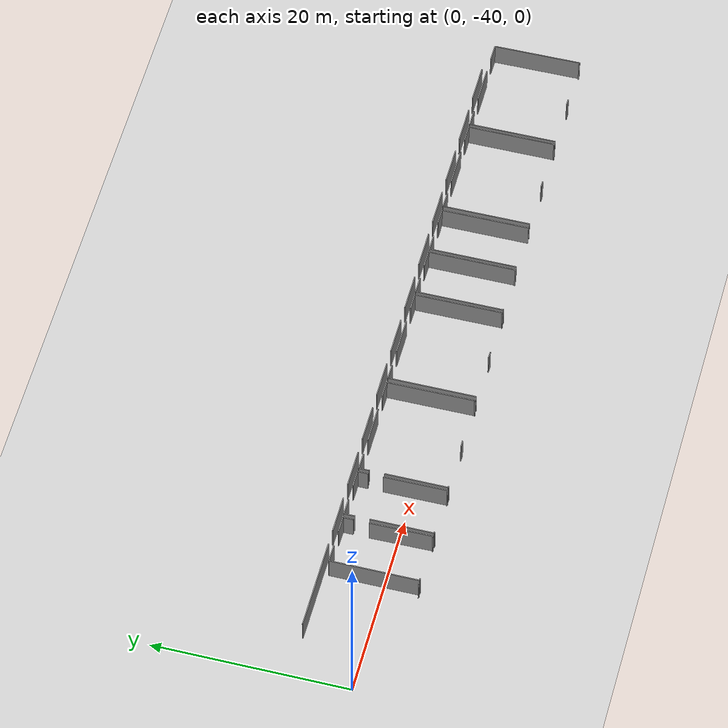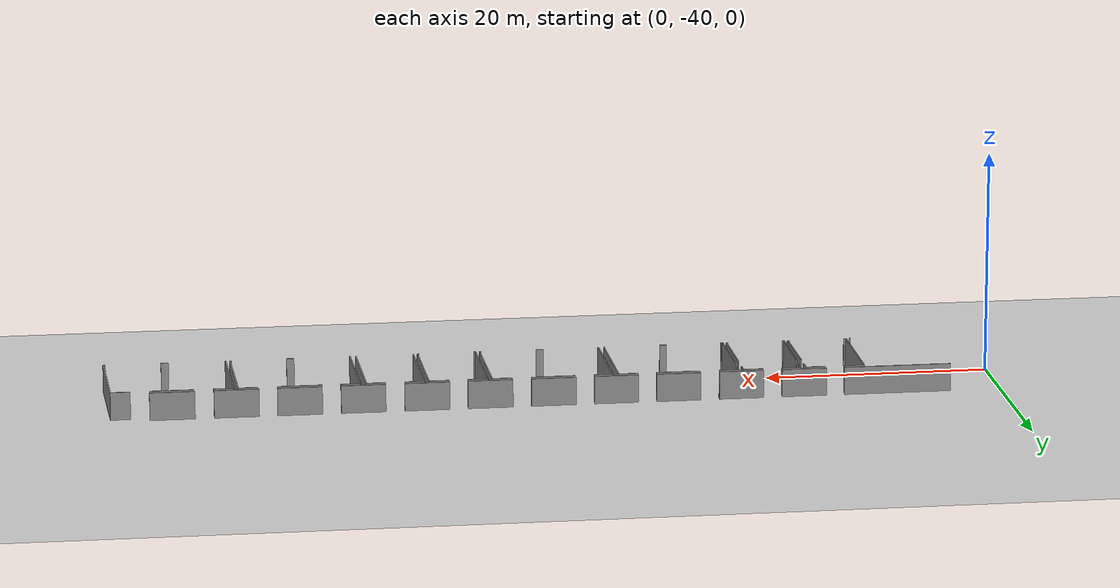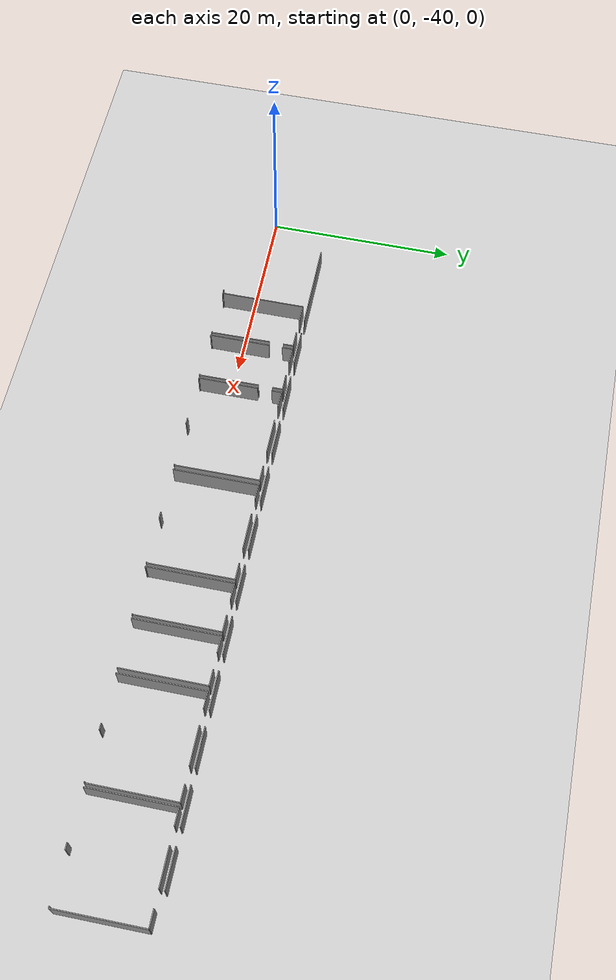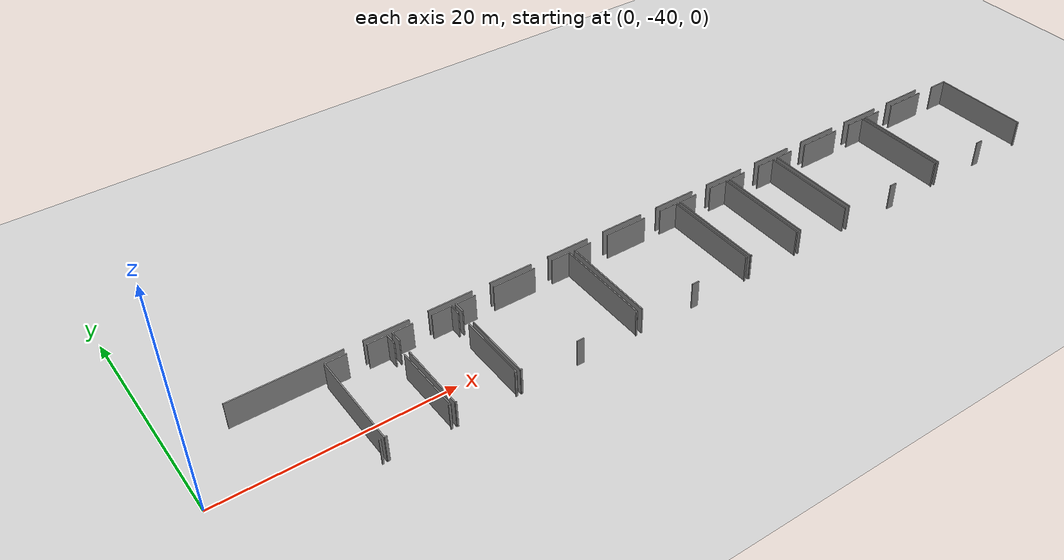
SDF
<sdf version="1.6">
 <world name="default">
  <model name="ground_plane">
   <static>1</static>
   <link name="link">
    <collision name="collision">
     <geometry><plane><normal>0 0 1</normal><size>100 100</size></plane></geometry>
     <surface><friction><ode><mu>100</mu><mu2>50</mu2></ode></friction></surface>
    </collision>
    <visual name="visual">
     <cast_shadows>0</cast_shadows>
     <geometry><plane><normal>0 0 1</normal><size>100 100</size></plane></geometry>
     <material>
      <script><uri>file://media/materials/scripts/gazebo.material</uri><name>Gazebo/Grey</name></script>
     </material>
    </visual>
   </link>
  </model>
  <model name="50015849">
   <static>1</static>
   <link name="Wall_64">
    <collision name="Wall_64_Collision">
     <geometry><box><size>3.99093143325 0.1 2.5</size></box></geometry>
     <pose>1.99546571663 0 1.25 0 0 0</pose>
    </collision>
    <visual name="Wall_64_Visual">
     <pose>1.99546571663 0 1.25 0 0 0</pose>
     <geometry><box><size>3.99093143325 0.1 2.5</size></box></geometry>
     <material>
      <script><uri>file://media/materials/scripts/gazebo.material</uri><name>Gazebo/Grey</name></script>
      <ambient>1 1 1 1</ambient>
     </material>
    </visual>
    <pose>201.728870176 -77.6431887316 0 0 0 3.14159265359</pose>
   </link>
   <link name="Wall_65">
    <collision name="Wall_65_Collision">
     <geometry><box><size>3.96476722107 0.1 2.5</size></box></geometry>
     <pose>1.98238361053 0 1.25 0 0 0</pose>
    </collision>
    <visual name="Wall_65_Visual">
     <pose>1.98238361053 0 1.25 0 0 0</pose>
     <geometry><box><size>3.96476722107 0.1 2.5</size></box></geometry>
     <material>
      <script><uri>file://media/materials/scripts/gazebo.material</uri><name>Gazebo/Grey</name></script>
      <ambient>1 1 1 1</ambient>
     </material>
    </visual>
    <pose>196.073844044 -77.6431887316 0 0 0 3.14159265359</pose>
   </link>
   <link name="Wall_66">
    <collision name="Wall_66_Collision">
     <geometry><box><size>3.9655292855 0.1 2.5</size></box></geometry>
     <pose>1.98276464275 0 1.25 0 0 0</pose>
    </collision>
    <visual name="Wall_66_Visual">
     <pose>1.98276464275 0 1.25 0 0 0</pose>
     <geometry><box><size>3.9655292855 0.1 2.5</size></box></geometry>
     <material>
      <script><uri>file://media/materials/scripts/gazebo.material</uri><name>Gazebo/Grey</name></script>
      <ambient>1 1 1 1</ambient>
     </material>
    </visual>
    <pose>190.526523018 -77.6431887316 0 0 0 3.14159265359</pose>
   </link>
   <link name="Wall_67">
    <collision name="Wall_67_Collision">
     <geometry><box><size>3.93606279411 0.1 2.5</size></box></geometry>
     <pose>1.96803139705 0 1.25 0 0 0</pose>
    </collision>
    <visual name="Wall_67_Visual">
     <pose>1.96803139705 0 1.25 0 0 0</pose>
     <geometry><box><size>3.93606279411 0.1 2.5</size></box></geometry>
     <material>
      <script><uri>file://media/materials/scripts/gazebo.material</uri><name>Gazebo/Grey</name></script>
      <ambient>1 1 1 1</ambient>
     </material>
    </visual>
    <pose>184.905281742 -77.6431887316 0 0 0 3.14159265359</pose>
   </link>
   <link name="Wall_68">
    <collision name="Wall_68_Collision">
     <geometry><box><size>3.97823035938 0.1 2.5</size></box></geometry>
     <pose>1.98911517969 0 1.25 0 0 0</pose>
    </collision>
    <visual name="Wall_68_Visual">
     <pose>1.98911517969 0 1.25 0 0 0</pose>
     <geometry><box><size>3.97823035938 0.1 2.5</size></box></geometry>
     <material>
      <script><uri>file://media/materials/scripts/gazebo.material</uri><name>Gazebo/Grey</name></script>
      <ambient>1 1 1 1</ambient>
     </material>
    </visual>
    <pose>179.299027733 -77.6431887316 0 0 0 3.14159265359</pose>
   </link>
   <link name="Wall_69">
    <collision name="Wall_69_Collision">
     <geometry><box><size>3.97823035938 0.1 2.5</size></box></geometry>
     <pose>1.98911517969 0 1.25 0 0 0</pose>
    </collision>
    <visual name="Wall_69_Visual">
     <pose>1.98911517969 0 1.25 0 0 0</pose>
     <geometry><box><size>3.97823035938 0.1 2.5</size></box></geometry>
     <material>
      <script><uri>file://media/materials/scripts/gazebo.material</uri><name>Gazebo/Grey</name></script>
      <ambient>1 1 1 1</ambient>
     </material>
    </visual>
    <pose>173.691503617 -77.6431887316 0 0 0 3.14159265359</pose>
   </link>
   <link name="Wall_70">
    <collision name="Wall_70_Collision">
     <geometry><box><size>3.97823035938 0.1 2.5</size></box></geometry>
     <pose>1.98911517969 0 1.25 0 0 0</pose>
    </collision>
    <visual name="Wall_70_Visual">
     <pose>1.98911517969 0 1.25 0 0 0</pose>
     <geometry><box><size>3.97823035938 0.1 2.5</size></box></geometry>
     <material>
      <script><uri>file://media/materials/scripts/gazebo.material</uri><name>Gazebo/Grey</name></script>
      <ambient>1 1 1 1</ambient>
     </material>
    </visual>
    <pose>168.084233522 -77.6431887316 0 0 0 3.14159265359</pose>
   </link>
   <link name="Wall_71">
    <collision name="Wall_71_Collision">
     <geometry><box><size>3.93606279411 0.1 2.5</size></box></geometry>
     <pose>1.96803139705 0 1.25 0 0 0</pose>
    </collision>
    <visual name="Wall_71_Visual">
     <pose>1.96803139705 0 1.25 0 0 0</pose>
     <geometry><box><size>3.93606279411 0.1 2.5</size></box></geometry>
     <material>
      <script><uri>file://media/materials/scripts/gazebo.material</uri><name>Gazebo/Grey</name></script>
      <ambient>1 1 1 1</ambient>
     </material>
    </visual>
    <pose>162.466040504 -77.6431887316 0 0 0 3.14159265359</pose>
   </link>
   <link name="Wall_72">
    <collision name="Wall_72_Collision">
     <geometry><box><size>3.93606279411 0.1 2.5</size></box></geometry>
     <pose>1.96803139705 0 1.25 0 0 0</pose>
    </collision>
    <visual name="Wall_72_Visual">
     <pose>1.96803139705 0 1.25 0 0 0</pose>
     <geometry><box><size>3.93606279411 0.1 2.5</size></box></geometry>
     <material>
      <script><uri>file://media/materials/scripts/gazebo.material</uri><name>Gazebo/Grey</name></script>
      <ambient>1 1 1 1</ambient>
     </material>
    </visual>
    <pose>156.903478189 -77.6431887316 0 0 0 3.14159265359</pose>
   </link>
   <link name="Wall_73">
    <collision name="Wall_73_Collision">
     <geometry><box><size>3.97594416608 0.1 2.5</size></box></geometry>
     <pose>1.98797208304 0 1.25 0 0 0</pose>
    </collision>
    <visual name="Wall_73_Visual">
     <pose>1.98797208304 0 1.25 0 0 0</pose>
     <geometry><box><size>3.97594416608 0.1 2.5</size></box></geometry>
     <material>
      <script><uri>file://media/materials/scripts/gazebo.material</uri><name>Gazebo/Grey</name></script>
      <ambient>1 1 1 1</ambient>
     </material>
    </visual>
    <pose>151.306368953 -77.6431887316 0 0 0 3.14159265359</pose>
   </link>
   <link name="Wall_74">
    <collision name="Wall_74_Collision">
     <geometry><box><size>3.99524979837 0.1 2.5</size></box></geometry>
     <pose>1.99762489919 0 1.25 0 0 0</pose>
    </collision>
    <visual name="Wall_74_Visual">
     <pose>1.99762489919 0 1.25 0 0 0</pose>
     <geometry><box><size>3.99524979837 0.1 2.5</size></box></geometry>
     <material>
      <script><uri>file://media/materials/scripts/gazebo.material</uri><name>Gazebo/Grey</name></script>
      <ambient>1 1 1 1</ambient>
     </material>
    </visual>
    <pose>145.688683978 -77.6431887316 0 0 0 3.14159265359</pose>
   </link>
   <link name="Wall_75">
    <collision name="Wall_75_Collision">
     <geometry><box><size>9.58473838963 0.1 2.5</size></box></geometry>
     <pose>4.79236919482 0 1.25 0 0 0</pose>
    </collision>
    <visual name="Wall_75_Visual">
     <pose>4.79236919482 0 1.25 0 0 0</pose>
     <geometry><box><size>9.58473838963 0.1 2.5</size></box></geometry>
     <material>
      <script><uri>file://media/materials/scripts/gazebo.material</uri><name>Gazebo/Grey</name></script>
      <ambient>1 1 1 1</ambient>
     </material>
    </visual>
    <pose>140.10834016 -77.6431887316 0 0 0 3.14159265359</pose>
   </link>
   <link name="Wall_143">
    <collision name="Wall_143_Collision">
     <geometry><box><size>0.151650822077 0.1 2.5</size></box></geometry>
     <pose>0.0758254110385 0 1.25 0 0 0</pose>
    </collision>
    <visual name="Wall_143_Visual">
     <pose>0.0758254110385 0 1.25 0 0 0</pose>
     <geometry><box><size>0.151650822077 0.1 2.5</size></box></geometry>
     <material>
      <script><uri>file://media/materials/scripts/gazebo.material</uri><name>Gazebo/Grey</name></script>
      <ambient>1 1 1 1</ambient>
     </material>
    </visual>
    <pose>137.937980656 -87.1921100929 0 0 0 3.14159265359</pose>
   </link>
   <link name="Wall_151">
    <collision name="Wall_151_Collision">
     <geometry><box><size>0.166892110728 0.1 2.5</size></box></geometry>
     <pose>0.083446055364 0 1.25 0 0 0</pose>
    </collision>
    <visual name="Wall_151_Visual">
     <pose>0.083446055364 0 1.25 0 0 0</pose>
     <geometry><box><size>0.166892110728 0.1 2.5</size></box></geometry>
     <material>
      <script><uri>file://media/materials/scripts/gazebo.material</uri><name>Gazebo/Grey</name></script>
      <ambient>1 1 1 1</ambient>
     </material>
    </visual>
    <pose>143.547282923 -87.1697562029 0 0 0 3.14159265359</pose>
   </link>
   <link name="Wall_152">
    <collision name="Wall_152_Collision">
     <geometry><box><size>0.217950427709 0.1 2.5</size></box></geometry>
     <pose>0.108975213854 0 1.25 0 0 0</pose>
    </collision>
    <visual name="Wall_152_Visual">
     <pose>0.108975213854 0 1.25 0 0 0</pose>
     <geometry><box><size>0.217950427709 0.1 2.5</size></box></geometry>
     <material>
      <script><uri>file://media/materials/scripts/gazebo.material</uri><name>Gazebo/Grey</name></script>
      <ambient>1 1 1 1</ambient>
     </material>
    </visual>
    <pose>138.443737418 -87.1697562029 0 0 0 3.14159265359</pose>
   </link>
   <link name="Wall_153">
    <collision name="Wall_153_Collision">
     <geometry><box><size>8.97940520871 0.1 2.5</size></box></geometry>
     <pose>4.48970260436 0 1.25 0 0 0</pose>
    </collision>
    <visual name="Wall_153_Visual">
     <pose>4.48970260436 0 1.25 0 0 0</pose>
     <geometry><box><size>8.97940520871 0.1 2.5</size></box></geometry>
     <material>
      <script><uri>file://media/materials/scripts/gazebo.material</uri><name>Gazebo/Grey</name></script>
      <ambient>1 1 1 1</ambient>
     </material>
    </visual>
    <pose>138.22578699 -87.1697562029 0 0 0 1.57079632679</pose>
   </link>
   <link name="Wall_154">
    <collision name="Wall_154_Collision">
     <geometry><box><size>1.81549149981 0.1 2.5</size></box></geometry>
     <pose>0.907745749903 0 1.25 0 0 0</pose>
    </collision>
    <visual name="Wall_154_Visual">
     <pose>0.907745749903 0 1.25 0 0 0</pose>
     <geometry><box><size>1.81549149981 0.1 2.5</size></box></geometry>
     <material>
      <script><uri>file://media/materials/scripts/gazebo.material</uri><name>Gazebo/Grey</name></script>
      <ambient>1 1 1 1</ambient>
     </material>
    </visual>
    <pose>138.22578699 -78.1903509942 0 0 0 0.0</pose>
   </link>
   <link name="Wall_155">
    <collision name="Wall_155_Collision">
     <geometry><box><size>1.74284135724 0.1 2.5</size></box></geometry>
     <pose>0.871420678618 0 1.25 0 0 0</pose>
    </collision>
    <visual name="Wall_155_Visual">
     <pose>0.871420678618 0 1.25 0 0 0</pose>
     <geometry><box><size>1.74284135724 0.1 2.5</size></box></geometry>
     <material>
      <script><uri>file://media/materials/scripts/gazebo.material</uri><name>Gazebo/Grey</name></script>
      <ambient>1 1 1 1</ambient>
     </material>
    </visual>
    <pose>141.725948929 -78.1903509942 0 0 0 0.0</pose>
   </link>
   <link name="Wall_156">
    <collision name="Wall_156_Collision">
     <geometry><box><size>1.06028564715 0.1 2.5</size></box></geometry>
     <pose>0.530142823576 0 1.25 0 0 0</pose>
    </collision>
    <visual name="Wall_156_Visual">
     <pose>0.530142823576 0 1.25 0 0 0</pose>
     <geometry><box><size>1.06028564715 0.1 2.5</size></box></geometry>
     <material>
      <script><uri>file://media/materials/scripts/gazebo.material</uri><name>Gazebo/Grey</name></script>
      <ambient>1 1 1 1</ambient>
     </material>
    </visual>
    <pose>143.468790286 -78.1903509942 0 0 0 -1.57079632679</pose>
   </link>
   <link name="Wall_157">
    <collision name="Wall_157_Collision">
     <geometry><box><size>6.37997825061 0.1 2.5</size></box></geometry>
     <pose>3.18998912531 0 1.25 0 0 0</pose>
    </collision>
    <visual name="Wall_157_Visual">
     <pose>3.18998912531 0 1.25 0 0 0</pose>
     <geometry><box><size>6.37997825061 0.1 2.5</size></box></geometry>
     <material>
      <script><uri>file://media/materials/scripts/gazebo.material</uri><name>Gazebo/Grey</name></script>
      <ambient>1 1 1 1</ambient>
     </material>
    </visual>
    <pose>143.468790286 -80.7902608166 0 0 0 -1.55849305337</pose>
   </link>
   <link name="Wall_158">
    <collision name="Wall_158_Collision">
     <geometry><box><size>0.145300285139 0.1 2.5</size></box></geometry>
     <pose>0.0726501425696 0 1.25 0 0 0</pose>
    </collision>
    <visual name="Wall_158_Visual">
     <pose>0.0726501425696 0 1.25 0 0 0</pose>
     <geometry><box><size>0.145300285139 0.1 2.5</size></box></geometry>
     <material>
      <script><uri>file://media/materials/scripts/gazebo.material</uri><name>Gazebo/Grey</name></script>
      <ambient>1 1 1 1</ambient>
     </material>
    </visual>
    <pose>149.133215213 -87.1951583506 0 0 0 3.14159265359</pose>
   </link>
   <link name="Wall_159">
    <collision name="Wall_159_Collision">
     <geometry><box><size>0.145046263662 0.1 2.5</size></box></geometry>
     <pose>0.0725231318308 0 1.25 0 0 0</pose>
    </collision>
    <visual name="Wall_159_Visual">
     <pose>0.0725231318308 0 1.25 0 0 0</pose>
     <geometry><box><size>0.145046263662 0.1 2.5</size></box></geometry>
     <material>
      <script><uri>file://media/materials/scripts/gazebo.material</uri><name>Gazebo/Grey</name></script>
      <ambient>1 1 1 1</ambient>
     </material>
    </visual>
    <pose>144.049737405 -87.1951583506 0 0 0 3.14159265359</pose>
   </link>
   <link name="Wall_160">
    <collision name="Wall_160_Collision">
     <geometry><box><size>6.43919043355 0.1 2.5</size></box></geometry>
     <pose>3.21959521678 0 1.25 0 0 0</pose>
    </collision>
    <visual name="Wall_160_Visual">
     <pose>3.21959521678 0 1.25 0 0 0</pose>
     <geometry><box><size>6.43919043355 0.1 2.5</size></box></geometry>
     <material>
      <script><uri>file://media/materials/scripts/gazebo.material</uri><name>Gazebo/Grey</name></script>
      <ambient>1 1 1 1</ambient>
     </material>
    </visual>
    <pose>143.904691142 -87.1951583506 0 0 0 1.57079632679</pose>
   </link>
   <link name="Wall_161">
    <collision name="Wall_161_Collision">
     <geometry><box><size>1.11134396413 0.1 2.5</size></box></geometry>
     <pose>0.555671982066 0 1.25 0 0 0</pose>
    </collision>
    <visual name="Wall_161_Visual">
     <pose>0.555671982066 0 1.25 0 0 0</pose>
     <geometry><box><size>1.11134396413 0.1 2.5</size></box></geometry>
     <material>
      <script><uri>file://media/materials/scripts/gazebo.material</uri><name>Gazebo/Grey</name></script>
      <ambient>1 1 1 1</ambient>
     </material>
    </visual>
    <pose>143.904691142 -79.2859456267 0 0 0 1.57079632679</pose>
   </link>
   <link name="Wall_162">
    <collision name="Wall_162_Collision">
     <geometry><box><size>1.76240101101 0.1 2.5</size></box></geometry>
     <pose>0.881200505503 0 1.25 0 0 0</pose>
    </collision>
    <visual name="Wall_162_Visual">
     <pose>0.881200505503 0 1.25 0 0 0</pose>
     <geometry><box><size>1.76240101101 0.1 2.5</size></box></geometry>
     <material>
      <script><uri>file://media/materials/scripts/gazebo.material</uri><name>Gazebo/Grey</name></script>
      <ambient>1 1 1 1</ambient>
     </material>
    </visual>
    <pose>143.904691142 -78.1746016626 0 0 0 0.0</pose>
   </link>
   <link name="Wall_163">
    <collision name="Wall_163_Collision">
     <geometry><box><size>1.7669733976 0.1 2.5</size></box></geometry>
     <pose>0.8834866988 0 1.25 0 0 0</pose>
    </collision>
    <visual name="Wall_163_Visual">
     <pose>0.8834866988 0 1.25 0 0 0</pose>
     <geometry><box><size>1.7669733976 0.1 2.5</size></box></geometry>
     <material>
      <script><uri>file://media/materials/scripts/gazebo.material</uri><name>Gazebo/Grey</name></script>
      <ambient>1 1 1 1</ambient>
     </material>
    </visual>
    <pose>147.330424787 -78.1746016626 0 0 0 0.0</pose>
   </link>
   <link name="Wall_164">
    <collision name="Wall_164_Collision">
     <geometry><box><size>1.0732407425 0.1 2.5</size></box></geometry>
     <pose>0.536620371252 0 1.25 0 0 0</pose>
    </collision>
    <visual name="Wall_164_Visual">
     <pose>0.536620371252 0 1.25 0 0 0</pose>
     <geometry><box><size>1.0732407425 0.1 2.5</size></box></geometry>
     <material>
      <script><uri>file://media/materials/scripts/gazebo.material</uri><name>Gazebo/Grey</name></script>
      <ambient>1 1 1 1</ambient>
     </material>
    </visual>
    <pose>149.097398185 -78.1746016626 0 0 0 -1.57079632679</pose>
   </link>
   <link name="Wall_165">
    <collision name="Wall_165_Collision">
     <geometry><box><size>6.42989139714 0.1 2.5</size></box></geometry>
     <pose>3.21494569857 0 1.25 0 0 0</pose>
    </collision>
    <visual name="Wall_165_Visual">
     <pose>3.21494569857 0 1.25 0 0 0</pose>
     <geometry><box><size>6.42989139714 0.1 2.5</size></box></geometry>
     <material>
      <script><uri>file://media/materials/scripts/gazebo.material</uri><name>Gazebo/Grey</name></script>
      <ambient>1 1 1 1</ambient>
     </material>
    </visual>
    <pose>149.097398185 -80.7653667118 0 0 0 -1.56522590401</pose>
   </link>
   <link name="Wall_166">
    <collision name="Wall_166_Collision">
     <geometry><box><size>0.116087815225 0.1 2.5</size></box></geometry>
     <pose>0.0580439076124 0 1.25 0 0 0</pose>
    </collision>
    <visual name="Wall_166_Visual">
     <pose>0.0580439076124 0 1.25 0 0 0</pose>
     <geometry><box><size>0.116087815225 0.1 2.5</size></box></geometry>
     <material>
      <script><uri>file://media/materials/scripts/gazebo.material</uri><name>Gazebo/Grey</name></script>
      <ambient>1 1 1 1</ambient>
     </material>
    </visual>
    <pose>160.287298291 -87.1806791264 0 0 0 3.14159265359</pose>
   </link>
   <link name="Wall_167">
    <collision name="Wall_167_Collision">
     <geometry><box><size>0.653343240171 0.1 2.5</size></box></geometry>
     <pose>0.326671620085 0 1.25 0 0 0</pose>
    </collision>
    <visual name="Wall_167_Visual">
     <pose>0.326671620085 0 1.25 0 0 0</pose>
     <geometry><box><size>0.653343240171 0.1 2.5</size></box></geometry>
     <material>
      <script><uri>file://media/materials/scripts/gazebo.material</uri><name>Gazebo/Grey</name></script>
      <ambient>1 1 1 1</ambient>
     </material>
    </visual>
    <pose>155.233032953 -87.1806791264 0 0 0 3.14159265359</pose>
   </link>
   <link name="Wall_168">
    <collision name="Wall_168_Collision">
     <geometry><box><size>0.159779509358 0.1 2.5</size></box></geometry>
     <pose>0.0798897546788 0 1.25 0 0 0</pose>
    </collision>
    <visual name="Wall_168_Visual">
     <pose>0.0798897546788 0 1.25 0 0 0</pose>
     <geometry><box><size>0.159779509358 0.1 2.5</size></box></geometry>
     <material>
      <script><uri>file://media/materials/scripts/gazebo.material</uri><name>Gazebo/Grey</name></script>
      <ambient>1 1 1 1</ambient>
     </material>
    </visual>
    <pose>149.64151219 -87.1806791264 0 0 0 3.14159265359</pose>
   </link>
   <link name="Wall_169">
    <collision name="Wall_169_Collision">
     <geometry><box><size>6.39041830987 0.1 2.5</size></box></geometry>
     <pose>3.19520915493 0 1.25 0 0 0</pose>
    </collision>
    <visual name="Wall_169_Visual">
     <pose>3.19520915493 0 1.25 0 0 0</pose>
     <geometry><box><size>6.39041830987 0.1 2.5</size></box></geometry>
     <material>
      <script><uri>file://media/materials/scripts/gazebo.material</uri><name>Gazebo/Grey</name></script>
      <ambient>1 1 1 1</ambient>
     </material>
    </visual>
    <pose>149.48173268 -87.1806791264 0 0 0 1.57079632679</pose>
   </link>
   <link name="Wall_170">
    <collision name="Wall_170_Collision">
     <geometry><box><size>1.04555240146 0.1 2.5</size></box></geometry>
     <pose>0.522776200728 0 1.25 0 0 0</pose>
    </collision>
    <visual name="Wall_170_Visual">
     <pose>0.522776200728 0 1.25 0 0 0</pose>
     <geometry><box><size>1.04555240146 0.1 2.5</size></box></geometry>
     <material>
      <script><uri>file://media/materials/scripts/gazebo.material</uri><name>Gazebo/Grey</name></script>
      <ambient>1 1 1 1</ambient>
     </material>
    </visual>
    <pose>149.48173268 -79.2506366413 0 0 0 1.57079632679</pose>
   </link>
   <link name="Wall_171">
    <collision name="Wall_171_Collision">
     <geometry><box><size>1.78653305137 0.1 2.5</size></box></geometry>
     <pose>0.893266525685 0 1.25 0 0 0</pose>
    </collision>
    <visual name="Wall_171_Visual">
     <pose>0.893266525685 0 1.25 0 0 0</pose>
     <geometry><box><size>1.78653305137 0.1 2.5</size></box></geometry>
     <material>
      <script><uri>file://media/materials/scripts/gazebo.material</uri><name>Gazebo/Grey</name></script>
      <ambient>1 1 1 1</ambient>
     </material>
    </visual>
    <pose>149.48173268 -78.2050842399 0 0 0 0.0</pose>
   </link>
   <link name="Wall_172">
    <collision name="Wall_172_Collision">
     <geometry><box><size>3.92132954841 0.1 2.5</size></box></geometry>
     <pose>1.96066477421 0 1.25 0 0 0</pose>
    </collision>
    <visual name="Wall_172_Visual">
     <pose>1.96066477421 0 1.25 0 0 0</pose>
     <geometry><box><size>3.92132954841 0.1 2.5</size></box></geometry>
     <material>
      <script><uri>file://media/materials/scripts/gazebo.material</uri><name>Gazebo/Grey</name></script>
      <ambient>1 1 1 1</ambient>
     </material>
    </visual>
    <pose>152.938456947 -78.2050842399 0 0 0 0.0</pose>
   </link>
   <link name="Wall_173">
    <collision name="Wall_173_Collision">
     <geometry><box><size>1.72048746722 0.1 2.5</size></box></geometry>
     <pose>0.860243733608 0 1.25 0 0 0</pose>
    </collision>
    <visual name="Wall_173_Visual">
     <pose>0.860243733608 0 1.25 0 0 0</pose>
     <geometry><box><size>1.72048746722 0.1 2.5</size></box></geometry>
     <material>
      <script><uri>file://media/materials/scripts/gazebo.material</uri><name>Gazebo/Grey</name></script>
      <ambient>1 1 1 1</ambient>
     </material>
    </visual>
    <pose>158.529215645 -78.2050842399 0 0 0 0.0</pose>
   </link>
   <link name="Wall_174">
    <collision name="Wall_174_Collision">
     <geometry><box><size>8.97567362179 0.1 2.5</size></box></geometry>
     <pose>4.48783681089 0 1.25 0 0 0</pose>
    </collision>
    <visual name="Wall_174_Visual">
     <pose>4.48783681089 0 1.25 0 0 0</pose>
     <geometry><box><size>8.97567362179 0.1 2.5</size></box></geometry>
     <material>
      <script><uri>file://media/materials/scripts/gazebo.material</uri><name>Gazebo/Grey</name></script>
      <ambient>1 1 1 1</ambient>
     </material>
    </visual>
    <pose>160.249703112 -78.2050842399 0 0 0 -1.56660775108</pose>
   </link>
   <link name="Wall_175">
    <collision name="Wall_175_Collision">
     <geometry><box><size>0.138949748201 0.1 2.5</size></box></geometry>
     <pose>0.0694748741006 0 1.25 0 0 0</pose>
    </collision>
    <visual name="Wall_175_Visual">
     <pose>0.0694748741006 0 1.25 0 0 0</pose>
     <geometry><box><size>0.138949748201 0.1 2.5</size></box></geometry>
     <material>
      <script><uri>file://media/materials/scripts/gazebo.material</uri><name>Gazebo/Grey</name></script>
      <ambient>1 1 1 1</ambient>
     </material>
    </visual>
    <pose>171.532067036 -87.2045571453 0 0 0 3.14159265359</pose>
   </link>
   <link name="Wall_176">
    <collision name="Wall_176_Collision">
     <geometry><box><size>0.664012142227 0.1 2.5</size></box></geometry>
     <pose>0.332006071113 0 1.25 0 0 0</pose>
    </collision>
    <visual name="Wall_176_Visual">
     <pose>0.332006071113 0 1.25 0 0 0</pose>
     <geometry><box><size>0.664012142227 0.1 2.5</size></box></geometry>
     <material>
      <script><uri>file://media/materials/scripts/gazebo.material</uri><name>Gazebo/Grey</name></script>
      <ambient>1 1 1 1</ambient>
     </material>
    </visual>
    <pose>166.442238691 -87.2045571453 0 0 0 3.14159265359</pose>
   </link>
   <link name="Wall_177">
    <collision name="Wall_177_Collision">
     <geometry><box><size>8.99947290543 0.1 2.5</size></box></geometry>
     <pose>4.49973645272 0 1.25 0 0 0</pose>
    </collision>
    <visual name="Wall_177_Visual">
     <pose>4.49973645272 0 1.25 0 0 0</pose>
     <geometry><box><size>8.99947290543 0.1 2.5</size></box></geometry>
     <material>
      <script><uri>file://media/materials/scripts/gazebo.material</uri><name>Gazebo/Grey</name></script>
      <ambient>1 1 1 1</ambient>
     </material>
    </visual>
    <pose>160.781370065 -87.2045571453 0 0 0 1.57079632679</pose>
   </link>
   <link name="Wall_178">
    <collision name="Wall_178_Collision">
     <geometry><box><size>1.64097874475 0.1 2.5</size></box></geometry>
     <pose>0.820489372376 0 1.25 0 0 0</pose>
    </collision>
    <visual name="Wall_178_Visual">
     <pose>0.820489372376 0 1.25 0 0 0</pose>
     <geometry><box><size>1.64097874475 0.1 2.5</size></box></geometry>
     <material>
      <script><uri>file://media/materials/scripts/gazebo.material</uri><name>Gazebo/Grey</name></script>
      <ambient>1 1 1 1</ambient>
     </material>
    </visual>
    <pose>160.781370065 -78.2050842399 0 0 0 0.0</pose>
   </link>
   <link name="Wall_179">
    <collision name="Wall_179_Collision">
     <geometry><box><size>3.92768008535 0.1 2.5</size></box></geometry>
     <pose>1.96384004268 0 1.25 0 0 0</pose>
    </collision>
    <visual name="Wall_179_Visual">
     <pose>1.96384004268 0 1.25 0 0 0</pose>
     <geometry><box><size>3.92768008535 0.1 2.5</size></box></geometry>
     <material>
      <script><uri>file://media/materials/scripts/gazebo.material</uri><name>Gazebo/Grey</name></script>
      <ambient>1 1 1 1</ambient>
     </material>
    </visual>
    <pose>164.131151289 -78.2050842399 0 0 0 0.0</pose>
   </link>
   <link name="Wall_180">
    <collision name="Wall_180_Collision">
     <geometry><box><size>1.78653305137 0.1 2.5</size></box></geometry>
     <pose>0.893266525685 0 1.25 0 0 0</pose>
    </collision>
    <visual name="Wall_180_Visual">
     <pose>0.893266525685 0 1.25 0 0 0</pose>
     <geometry><box><size>1.78653305137 0.1 2.5</size></box></geometry>
     <material>
      <script><uri>file://media/materials/scripts/gazebo.material</uri><name>Gazebo/Grey</name></script>
      <ambient>1 1 1 1</ambient>
     </material>
    </visual>
    <pose>169.713273257 -78.2050842399 0 0 0 0.0</pose>
   </link>
   <link name="Wall_181">
    <collision name="Wall_181_Collision">
     <geometry><box><size>8.99953072833 0.1 2.5</size></box></geometry>
     <pose>4.49976536417 0 1.25 0 0 0</pose>
    </collision>
    <visual name="Wall_181_Visual">
     <pose>4.49976536417 0 1.25 0 0 0</pose>
     <geometry><box><size>8.99953072833 0.1 2.5</size></box></geometry>
     <material>
      <script><uri>file://media/materials/scripts/gazebo.material</uri><name>Gazebo/Grey</name></script>
      <ambient>1 1 1 1</ambient>
     </material>
    </visual>
    <pose>171.499806309 -78.2050842399 0 0 0 -1.56721160691</pose>
   </link>
   <link name="Wall_182">
    <collision name="Wall_182_Collision">
     <geometry><box><size>0.101862612484 0.1 2.5</size></box></geometry>
     <pose>0.0509313062419 0 1.25 0 0 0</pose>
    </collision>
    <visual name="Wall_182_Visual">
     <pose>0.0509313062419 0 1.25 0 0 0</pose>
     <geometry><box><size>0.101862612484 0.1 2.5</size></box></geometry>
     <material>
      <script><uri>file://media/materials/scripts/gazebo.material</uri><name>Gazebo/Grey</name></script>
      <ambient>1 1 1 1</ambient>
     </material>
    </visual>
    <pose>177.106060317 -87.1951583506 0 0 0 3.14159265359</pose>
   </link>
   <link name="Wall_183">
    <collision name="Wall_183_Collision">
     <geometry><box><size>0.142760070364 0.1 2.5</size></box></geometry>
     <pose>0.071380035182 0 1.25 0 0 0</pose>
    </collision>
    <visual name="Wall_183_Visual">
     <pose>0.071380035182 0 1.25 0 0 0</pose>
     <geometry><box><size>0.142760070364 0.1 2.5</size></box></geometry>
     <material>
      <script><uri>file://media/materials/scripts/gazebo.material</uri><name>Gazebo/Grey</name></script>
      <ambient>1 1 1 1</ambient>
     </material>
    </visual>
    <pose>172.033251411 -87.1951583506 0 0 0 3.14159265359</pose>
   </link>
   <link name="Wall_184">
    <collision name="Wall_184_Collision">
     <geometry><box><size>9.00480735646 0.1 2.5</size></box></geometry>
     <pose>4.50240367823 0 1.25 0 0 0</pose>
    </collision>
    <visual name="Wall_184_Visual">
     <pose>4.50240367823 0 1.25 0 0 0</pose>
     <geometry><box><size>9.00480735646 0.1 2.5</size></box></geometry>
     <material>
      <script><uri>file://media/materials/scripts/gazebo.material</uri><name>Gazebo/Grey</name></script>
      <ambient>1 1 1 1</ambient>
     </material>
    </visual>
    <pose>171.890491341 -87.1951583506 0 0 0 1.57079632679</pose>
   </link>
   <link name="Wall_185">
    <collision name="Wall_185_Collision">
     <geometry><box><size>1.78780315876 0.1 2.5</size></box></geometry>
     <pose>0.893901579379 0 1.25 0 0 0</pose>
    </collision>
    <visual name="Wall_185_Visual">
     <pose>0.893901579379 0 1.25 0 0 0</pose>
     <geometry><box><size>1.78780315876 0.1 2.5</size></box></geometry>
     <material>
      <script><uri>file://media/materials/scripts/gazebo.material</uri><name>Gazebo/Grey</name></script>
      <ambient>1 1 1 1</ambient>
     </material>
    </visual>
    <pose>171.890491341 -78.1903509942 0 0 0 0.0</pose>
   </link>
   <link name="Wall_186">
    <collision name="Wall_186_Collision">
     <geometry><box><size>1.81879377901 0.1 2.5</size></box></geometry>
     <pose>0.909396889507 0 1.25 0 0 0</pose>
    </collision>
    <visual name="Wall_186_Visual">
     <pose>0.909396889507 0 1.25 0 0 0</pose>
     <geometry><box><size>1.81879377901 0.1 2.5</size></box></geometry>
     <material>
      <script><uri>file://media/materials/scripts/gazebo.material</uri><name>Gazebo/Grey</name></script>
      <ambient>1 1 1 1</ambient>
     </material>
    </visual>
    <pose>175.295395226 -78.1903509942 0 0 0 0.0</pose>
   </link>
   <link name="Wall_187">
    <collision name="Wall_187_Collision">
     <geometry><box><size>9.00481102537 0.1 2.5</size></box></geometry>
     <pose>4.50240551268 0 1.25 0 0 0</pose>
    </collision>
    <visual name="Wall_187_Visual">
     <pose>4.50240551268 0 1.25 0 0 0</pose>
     <geometry><box><size>9.00481102537 0.1 2.5</size></box></geometry>
     <material>
      <script><uri>file://media/materials/scripts/gazebo.material</uri><name>Gazebo/Grey</name></script>
      <ambient>1 1 1 1</ambient>
     </material>
    </visual>
    <pose>177.114189005 -78.1903509942 0 0 0 -1.57169903184</pose>
   </link>
   <link name="Wall_188">
    <collision name="Wall_188_Collision">
     <geometry><box><size>9.00531539942 0.1 2.5</size></box></geometry>
     <pose>4.50265769971 0 1.25 0 0 0</pose>
    </collision>
    <visual name="Wall_188_Visual">
     <pose>4.50265769971 0 1.25 0 0 0</pose>
     <geometry><box><size>9.00531539942 0.1 2.5</size></box></geometry>
     <material>
      <script><uri>file://media/materials/scripts/gazebo.material</uri><name>Gazebo/Grey</name></script>
      <ambient>1 1 1 1</ambient>
     </material>
    </visual>
    <pose>177.491410899 -87.1974445439 0 0 0 1.57079632679</pose>
   </link>
   <link name="Wall_189">
    <collision name="Wall_189_Collision">
     <geometry><box><size>1.75706655998 0.1 2.5</size></box></geometry>
     <pose>0.878533279989 0 1.25 0 0 0</pose>
    </collision>
    <visual name="Wall_189_Visual">
     <pose>0.878533279989 0 1.25 0 0 0</pose>
     <geometry><box><size>1.75706655998 0.1 2.5</size></box></geometry>
     <material>
      <script><uri>file://media/materials/scripts/gazebo.material</uri><name>Gazebo/Grey</name></script>
      <ambient>1 1 1 1</ambient>
     </material>
    </visual>
    <pose>177.491410899 -78.1921291445 0 0 0 0.0</pose>
   </link>
   <link name="Wall_190">
    <collision name="Wall_190_Collision">
     <geometry><box><size>1.69229108321 0.1 2.5</size></box></geometry>
     <pose>0.846145541606 0 1.25 0 0 0</pose>
    </collision>
    <visual name="Wall_190_Visual">
     <pose>0.846145541606 0 1.25 0 0 0</pose>
     <geometry><box><size>1.69229108321 0.1 2.5</size></box></geometry>
     <material>
      <script><uri>file://media/materials/scripts/gazebo.material</uri><name>Gazebo/Grey</name></script>
      <ambient>1 1 1 1</ambient>
     </material>
    </visual>
    <pose>180.953469616 -78.1921291445 0 0 0 0.0</pose>
   </link>
   <link name="Wall_191">
    <collision name="Wall_191_Collision">
     <geometry><box><size>9.00531820826 0.1 2.5</size></box></geometry>
     <pose>4.50265910413 0 1.25 0 0 0</pose>
    </collision>
    <visual name="Wall_191_Visual">
     <pose>4.50265910413 0 1.25 0 0 0</pose>
     <geometry><box><size>9.00531820826 0.1 2.5</size></box></geometry>
     <material>
      <script><uri>file://media/materials/scripts/gazebo.material</uri><name>Gazebo/Grey</name></script>
      <ambient>1 1 1 1</ambient>
     </material>
    </visual>
    <pose>182.645760699 -78.1921291445 0 0 0 -1.57000650439</pose>
   </link>
   <link name="Wall_192">
    <collision name="Wall_192_Collision">
     <geometry><box><size>0.130567039443 0.1 2.5</size></box></geometry>
     <pose>0.0652835197216 0 1.25 0 0 0</pose>
    </collision>
    <visual name="Wall_192_Visual">
     <pose>0.0652835197216 0 1.25 0 0 0</pose>
     <geometry><box><size>0.130567039443 0.1 2.5</size></box></geometry>
     <material>
      <script><uri>file://media/materials/scripts/gazebo.material</uri><name>Gazebo/Grey</name></script>
      <ambient>1 1 1 1</ambient>
     </material>
    </visual>
    <pose>193.909835077 -87.1951583506 0 0 0 3.14159265359</pose>
   </link>
   <link name="Wall_193">
    <collision name="Wall_193_Collision">
     <geometry><box><size>0.670108657687 0.1 2.5</size></box></geometry>
     <pose>0.335054328843 0 1.25 0 0 0</pose>
    </collision>
    <visual name="Wall_193_Visual">
     <pose>0.335054328843 0 1.25 0 0 0</pose>
     <geometry><box><size>0.670108657687 0.1 2.5</size></box></geometry>
     <material>
      <script><uri>file://media/materials/scripts/gazebo.material</uri><name>Gazebo/Grey</name></script>
      <ambient>1 1 1 1</ambient>
     </material>
    </visual>
    <pose>188.846933008 -87.1951583506 0 0 0 3.14159265359</pose>
   </link>
   <link name="Wall_194">
    <collision name="Wall_194_Collision">
     <geometry><box><size>9.00633148533 0.1 2.5</size></box></geometry>
     <pose>4.50316574266 0 1.25 0 0 0</pose>
    </collision>
    <visual name="Wall_194_Visual">
     <pose>4.50316574266 0 1.25 0 0 0</pose>
     <geometry><box><size>9.00633148533 0.1 2.5</size></box></geometry>
     <material>
      <script><uri>file://media/materials/scripts/gazebo.material</uri><name>Gazebo/Grey</name></script>
      <ambient>1 1 1 1</ambient>
     </material>
    </visual>
    <pose>183.169044943 -87.1951583506 0 0 0 1.57079632679</pose>
   </link>
   <link name="Wall_195">
    <collision name="Wall_195_Collision">
     <geometry><box><size>1.71997942426 0.1 2.5</size></box></geometry>
     <pose>0.85998971213 0 1.25 0 0 0</pose>
    </collision>
    <visual name="Wall_195_Visual">
     <pose>0.85998971213 0 1.25 0 0 0</pose>
     <geometry><box><size>1.71997942426 0.1 2.5</size></box></geometry>
     <material>
      <script><uri>file://media/materials/scripts/gazebo.material</uri><name>Gazebo/Grey</name></script>
      <ambient>1 1 1 1</ambient>
     </material>
    </visual>
    <pose>183.169044943 -78.1888268653 0 0 0 0.0</pose>
   </link>
   <link name="Wall_196">
    <collision name="Wall_196_Collision">
     <geometry><box><size>3.94266735252 0.1 2.5</size></box></geometry>
     <pose>1.97133367626 0 1.25 0 0 0</pose>
    </collision>
    <visual name="Wall_196_Visual">
     <pose>1.97133367626 0 1.25 0 0 0</pose>
     <geometry><box><size>3.94266735252 0.1 2.5</size></box></geometry>
     <material>
      <script><uri>file://media/materials/scripts/gazebo.material</uri><name>Gazebo/Grey</name></script>
      <ambient>1 1 1 1</ambient>
     </material>
    </visual>
    <pose>186.529495069 -78.1888268653 0 0 0 0.0</pose>
   </link>
   <link name="Wall_197">
    <collision name="Wall_197_Collision">
     <geometry><box><size>1.75706655998 0.1 2.5</size></box></geometry>
     <pose>0.878533279989 0 1.25 0 0 0</pose>
    </collision>
    <visual name="Wall_197_Visual">
     <pose>0.878533279989 0 1.25 0 0 0</pose>
     <geometry><box><size>1.75706655998 0.1 2.5</size></box></geometry>
     <material>
      <script><uri>file://media/materials/scripts/gazebo.material</uri><name>Gazebo/Grey</name></script>
      <ambient>1 1 1 1</ambient>
     </material>
    </visual>
    <pose>192.156324817 -78.1888268653 0 0 0 0.0</pose>
   </link>
   <link name="Wall_198">
    <collision name="Wall_198_Collision">
     <geometry><box><size>9.00633218746 0.1 2.5</size></box></geometry>
     <pose>4.50316609373 0 1.25 0 0 0</pose>
    </collision>
    <visual name="Wall_198_Visual">
     <pose>4.50316609373 0 1.25 0 0 0</pose>
     <geometry><box><size>9.00633218746 0.1 2.5</size></box></geometry>
     <material>
      <script><uri>file://media/materials/scripts/gazebo.material</uri><name>Gazebo/Grey</name></script>
      <ambient>1 1 1 1</ambient>
     </material>
    </visual>
    <pose>193.913391377 -78.1888268653 0 0 0 -1.57119119351</pose>
   </link>
   <link name="Wall_199">
    <collision name="Wall_199_Collision">
     <geometry><box><size>0.187721871884 0.1 2.5</size></box></geometry>
     <pose>0.0938609359421 0 1.25 0 0 0</pose>
    </collision>
    <visual name="Wall_199_Visual">
     <pose>0.0938609359421 0 1.25 0 0 0</pose>
     <geometry><box><size>0.187721871884 0.1 2.5</size></box></geometry>
     <material>
      <script><uri>file://media/materials/scripts/gazebo.material</uri><name>Gazebo/Grey</name></script>
      <ambient>1 1 1 1</ambient>
     </material>
    </visual>
    <pose>205.164764681 -87.2190363695 0 0 0 3.14159265359</pose>
   </link>
   <link name="Wall_200">
    <collision name="Wall_200_Collision">
     <geometry><box><size>0.668330507344 0.1 2.5</size></box></geometry>
     <pose>0.334165253672 0 1.25 0 0 0</pose>
    </collision>
    <visual name="Wall_200_Visual">
     <pose>0.334165253672 0 1.25 0 0 0</pose>
     <geometry><box><size>0.668330507344 0.1 2.5</size></box></geometry>
     <material>
      <script><uri>file://media/materials/scripts/gazebo.material</uri><name>Gazebo/Grey</name></script>
      <ambient>1 1 1 1</ambient>
     </material>
    </visual>
    <pose>200.053598532 -87.2190363695 0 0 0 3.14159265359</pose>
   </link>
   <link name="Wall_201">
    <collision name="Wall_201_Collision">
     <geometry><box><size>9.01395212965 0.1 2.5</size></box></geometry>
     <pose>4.50697606483 0 1.25 0 0 0</pose>
    </collision>
    <visual name="Wall_201_Visual">
     <pose>4.50697606483 0 1.25 0 0 0</pose>
     <geometry><box><size>9.01395212965 0.1 2.5</size></box></geometry>
     <material>
      <script><uri>file://media/materials/scripts/gazebo.material</uri><name>Gazebo/Grey</name></script>
      <ambient>1 1 1 1</ambient>
     </material>
    </visual>
    <pose>194.287565014 -87.2190363695 0 0 0 1.57079632679</pose>
   </link>
   <link name="Wall_202">
    <collision name="Wall_202_Collision">
     <geometry><box><size>1.77179980567 0.1 2.5</size></box></geometry>
     <pose>0.885899902837 0 1.25 0 0 0</pose>
    </collision>
    <visual name="Wall_202_Visual">
     <pose>0.885899902837 0 1.25 0 0 0</pose>
     <geometry><box><size>1.77179980567 0.1 2.5</size></box></geometry>
     <material>
      <script><uri>file://media/materials/scripts/gazebo.material</uri><name>Gazebo/Grey</name></script>
      <ambient>1 1 1 1</ambient>
     </material>
    </visual>
    <pose>194.287565014 -78.2050842399 0 0 0 0.0</pose>
   </link>
   <link name="Wall_203">
    <collision name="Wall_203_Collision">
     <geometry><box><size>3.86341265154 0.1 2.5</size></box></geometry>
     <pose>1.93170632577 0 1.25 0 0 0</pose>
    </collision>
    <visual name="Wall_203_Visual">
     <pose>1.93170632577 0 1.25 0 0 0</pose>
     <geometry><box><size>3.86341265154 0.1 2.5</size></box></geometry>
     <material>
      <script><uri>file://media/materials/scripts/gazebo.material</uri><name>Gazebo/Grey</name></script>
      <ambient>1 1 1 1</ambient>
     </material>
    </visual>
    <pose>197.787726952 -78.2050842399 0 0 0 0.0</pose>
   </link>
   <link name="Wall_204">
    <collision name="Wall_204_Collision">
     <geometry><box><size>1.75554243111 0.1 2.5</size></box></geometry>
     <pose>0.877771215556 0 1.25 0 0 0</pose>
    </collision>
    <visual name="Wall_204_Visual">
     <pose>0.877771215556 0 1.25 0 0 0</pose>
     <geometry><box><size>1.75554243111 0.1 2.5</size></box></geometry>
     <material>
      <script><uri>file://media/materials/scripts/gazebo.material</uri><name>Gazebo/Grey</name></script>
      <ambient>1 1 1 1</ambient>
     </material>
    </visual>
    <pose>203.357909911 -78.2050842399 0 0 0 0.0</pose>
   </link>
   <link name="Wall_205">
    <collision name="Wall_205_Collision">
     <geometry><box><size>9.0140981774 0.1 2.5</size></box></geometry>
     <pose>4.5070490887 0 1.25 0 0 0</pose>
    </collision>
    <visual name="Wall_205_Visual">
     <pose>4.5070490887 0 1.25 0 0 0</pose>
     <geometry><box><size>9.0140981774 0.1 2.5</size></box></geometry>
     <material>
      <script><uri>file://media/materials/scripts/gazebo.material</uri><name>Gazebo/Grey</name></script>
      <ambient>1 1 1 1</ambient>
     </material>
    </visual>
    <pose>205.113452342 -78.2050842399 0 0 0 -1.56510384214</pose>
   </link>
   <pose>-126.05 43.7425752697 0 0 0 0</pose>
  </model>
 </world>
</sdf>
